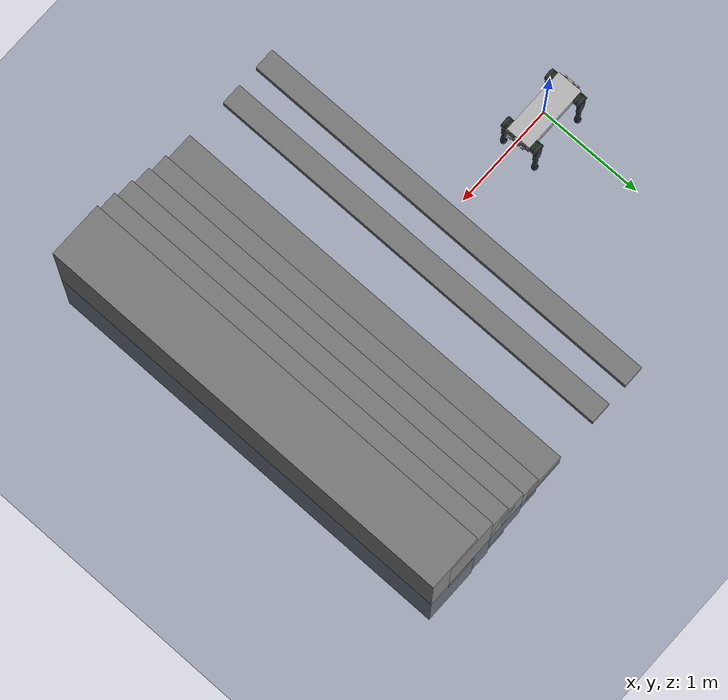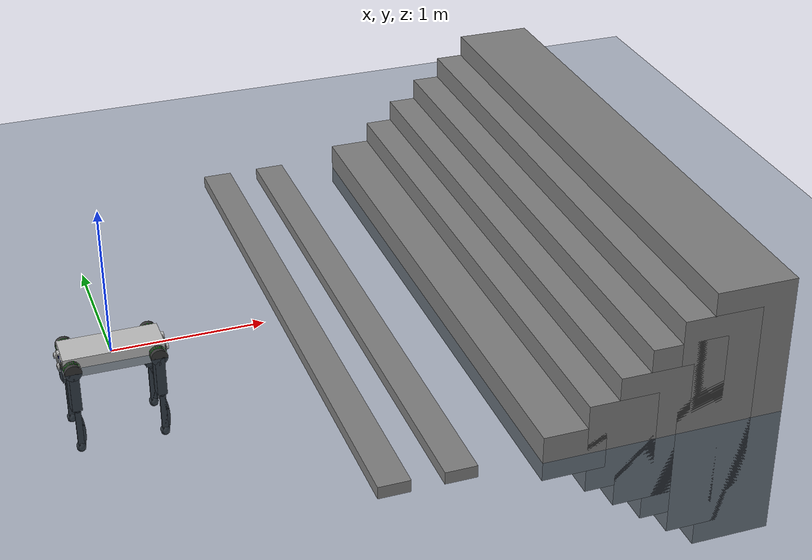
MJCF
<mujoco model="aliengo scene">
  <include file="test820.xml"/>

  <statistic center="0 0 0.1" extent="0.8"/>

  <visual>
    <headlight diffuse="0.6 0.6 0.6" ambient="0.3 0.3 0.3" specular="0 0 0"/>
    <rgba haze="0.15 0.25 0.35 1"/>
  </visual>

  <asset>
    <texture type="skybox" builtin="gradient" rgb1="0.3 0.5 0.7" rgb2="0 0 0" width="512" height="3072"/>
    <texture type="2d" name="groundplane" builtin="checker" mark="edge" rgb1="0.2 0.3 0.4" rgb2="0.1 0.2 0.3"
      markrgb="0.8 0.8 0.8" width="300" height="300"/>
    <material name="groundplane" texture="groundplane" texuniform="true" texrepeat="5 5" reflectance="0.2"/>
  </asset>

  <worldbody>
    <light pos="0 0 1.5" dir="0 0 -1" directional="true"/>
    <geom name="floor" size="0 0 0.05" type="plane" material="groundplane"/>

    <geom pos="1.2 0 0.04" type="box"  size="0.1 2 0.04" quat="1.0 0 0 0"/>
    <geom pos="1.6 0 0.04" type="box"  size="0.1 2 0.04" quat="1.0 0 0 0"/>

    <geom pos="2.3 0 0.02" type="box"  size="0.2 2 0.15" quat="1.0 0 0 0"/>
    <geom pos="2.6 0 0.02" type="box"  size="0.22 2 0.3" quat="1.0 0 0 0"/>
    <geom pos="2.8 0 0.02" type="box"  size="0.23 2 0.45" quat="1.0 0 0 0"/>
    <geom pos="3 0 0.02" type="box"  size="0.24 2 0.6" quat="1.0 0 0 0"/>
    <geom pos="3.2 0 0.02" type="box"  size="0.25 2 0.75" quat="1.0 0 0 0"/>
    <geom pos="3.4 0 0.02" type="box"  size="0.26 2 0.9" quat="1.0 0 0 0"/>
  </worldbody>
</mujoco>

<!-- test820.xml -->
<mujoco model="aliengo">
    <compiler angle="radian" meshdir="" />
    <size njmax="500" nconmax="100" />
    <asset>
        <mesh name="trunk" file="trunk.STL" />
        <mesh name="FR_hip" file="FR_hip.STL" />
        <mesh name="FR_thigh" file="FR_thigh.STL" />
        <mesh name="FR_calf" file="FR_calf.STL" />
        <mesh name="FR_foot" file="FR_foot.STL" />
        <mesh name="FL_hip" file="FL_hip.STL" />
        <mesh name="FL_thigh" file="FL_thigh.STL" />
        <mesh name="FL_calf" file="FL_calf.STL" />
        <mesh name="FL_foot" file="FL_foot.STL" />
        <mesh name="RR_hip" file="RR_hip.STL" />
        <mesh name="RR_thigh" file="RR_thigh.STL" />
        <mesh name="RR_calf" file="RR_calf.STL" />
        <mesh name="RR_foot" file="RR_foot.STL" />
        <mesh name="RL_hip" file="RL_hip.STL" />
        <mesh name="RL_thigh" file="RL_thigh.STL" />
        <mesh name="RL_calf" file="RL_calf.STL" />
        <mesh name="RL_foot" file="RL_foot.STL" />
    </asset>
    <worldbody>
        <geom size="0.0005 0.0005 0.0005" type="box" contype="0" conaffinity="0" group="1" />
        <geom type="mesh" contype="0" conaffinity="0" group="1" rgba="0.752941 0.752941 0.752941 1" mesh="trunk" />
        <geom size="0.3235 0.122 0.06675" type="box" rgba="0.752941 0.752941 0.752941 1" />
        <geom size="0.0005 0.0005 0.0005" type="box" contype="0" conaffinity="0" group="1" rgba="0.8 0 0.2 1" />
        <geom size="0.0005 0.0005 0.0005" type="box" rgba="0.8 0 0.2 1" />
        <geom size="0.025 0.01425" pos="0.17524 -0.065 0" quat="0.707107 0 0.707107 0" type="cylinder" contype="0" conaffinity="0" group="1" rgba="0.8 0 0.2 1" />
        <geom size="0.05 0.0285" pos="0.17524 -0.065 0" quat="0.707107 0 0.707107 0" type="cylinder" rgba="0.8 0 0.2 1" />
        <geom size="0.025 0.01425" pos="0.17524 0.065 0" quat="0.707107 0 0.707107 0" type="cylinder" contype="0" conaffinity="0" group="1" rgba="0.8 0 0.2 1" />
        <geom size="0.05 0.0285" pos="0.17524 0.065 0" quat="0.707107 0 0.707107 0" type="cylinder" rgba="0.8 0 0.2 1" />
        <geom size="0.025 0.01425" pos="-0.17524 -0.065 0" quat="0.707107 0 0.707107 0" type="cylinder" contype="0" conaffinity="0" group="1" rgba="0.8 0 0.2 1" />
        <geom size="0.05 0.0285" pos="-0.17524 -0.065 0" quat="0.707107 0 0.707107 0" type="cylinder" rgba="0.8 0 0.2 1" />
        <geom size="0.025 0.01425" pos="-0.17524 0.065 0" quat="0.707107 0 0.707107 0" type="cylinder" contype="0" conaffinity="0" group="1" rgba="0.8 0 0.2 1" />
        <geom size="0.05 0.0285" pos="-0.17524 0.065 0" quat="0.707107 0 0.707107 0" type="cylinder" rgba="0.8 0 0.2 1" />
        <body name="FR_hip" pos="0.2717 -0.065 0">
            <inertial pos="0 -0.0144744 0" quat="0.707107 0.707107 0 0" mass="1.86072" diaginertia="0.00531844 0.00531844 0.00323777" />
            <joint name="FR_hip_joint" pos="0 0 0" axis="1 0 0" limited="true" range="-0.873 1.047" />
            <geom type="mesh" contype="0" conaffinity="0" group="1" rgba="0.2 0.2 0.2 1" mesh="FR_hip" />
            <geom size="0.055 0.015" pos="0 -0.10665 0" quat="0.707107 0.707107 0 0" type="cylinder" rgba="0.2 0.2 0.2 1" />
            <geom size="0.0275 0.01375" pos="0 0.00545 0" quat="0.707107 0.707107 0 0" type="cylinder" contype="0" conaffinity="0" group="1" rgba="0 0 0.8 1" />
            <geom size="0.055 0.0275" pos="0 0.00545 0" quat="0.707107 0.707107 0 0" type="cylinder" rgba="0 0 0.8 1" />
            <body name="FR_thigh" pos="0 -0.10665 0">
                <inertial pos="0.00306424 0.0345571 -0.030486" quat="0.736578 -0.067477 0.0177918 0.672743" mass="1.9883" diaginertia="0.0184667 0.017479 0.00248764" />
                <joint name="FR_thigh_joint" pos="0 0 0" axis="0 1 0" limited="true" range="-0.524 3.927" />
                <geom type="mesh" contype="0" conaffinity="0" group="1" rgba="0.2 0.2 0.2 1" mesh="FR_thigh" />
                <geom size="0.0315 0.015 0.14" pos="0 0 -0.14" type="box" rgba="0.2 0.2 0.2 1" />
                <geom size="0.0275 0.01375" pos="0 0.0446 0" quat="0.707107 0.707107 0 0" type="cylinder" contype="0" conaffinity="0" group="1" rgba="0 0.8 0 1" />
                <geom size="0.055 0.0275" pos="0 0.0446 0" quat="0.707107 0.707107 0 0" type="cylinder" rgba="0 0.8 0 1" />
                <body name="FR_calf" pos="0 0 -0.28">
                    <inertial pos="0.010175 -0.000332634 -0.182164" quat="0.724338 0.00406092 0.0011974 0.689432" mass="0.25385" diaginertia="0.00350706 0.00348301 6.39204e-05" />
                    <joint name="FR_calf_joint" pos="0 0 0" axis="0 1 0" limited="true" range="-2.775 -0.611" />
                    <geom type="mesh" contype="0" conaffinity="0" group="1" rgba="0.2 0.2 0.2 1" mesh="FR_calf" />
                    <geom size="0.0195 0.01 0.14" pos="0 0 -0.14" type="box" rgba="0.2 0.2 0.2 1" />
                    <geom pos="0 0 -0.28" type="mesh" contype="0" conaffinity="0" group="1" rgba="0.2 0.2 0.2 1" mesh="FR_foot" />
                    <geom size="0.03" pos="0 0 -0.28" rgba="0.2 0.2 0.2 1" />
                </body>
            </body>
        </body>
        <body name="FL_hip" pos="0.2717 0.065 0">
            <inertial pos="0 0.0144744 0" quat="0.707107 0.707107 0 0" mass="1.86072" diaginertia="0.00531844 0.00531844 0.00323777" />
            <joint name="FL_hip_joint" pos="0 0 0" axis="1 0 0" limited="true" range="-0.873 1.047" />
            <geom type="mesh" contype="0" conaffinity="0" group="1" rgba="0.2 0.2 0.2 1" mesh="FL_hip" />
            <geom size="0.055 0.015" pos="0 0.10665 0" quat="0.707107 0.707107 0 0" type="cylinder" rgba="0.2 0.2 0.2 1" />
            <geom size="0.0275 0.01375" pos="0 -0.00545 0" quat="0.707107 0.707107 0 0" type="cylinder" contype="0" conaffinity="0" group="1" rgba="0 0 0.8 1" />
            <geom size="0.055 0.0275" pos="0 -0.00545 0" quat="0.707107 0.707107 0 0" type="cylinder" rgba="0 0 0.8 1" />
            <body name="FL_thigh" pos="0 0.10665 0">
                <inertial pos="0.00306424 -0.0345571 -0.030486" quat="0.672743 0.0177918 -0.067477 0.736578" mass="1.9883" diaginertia="0.0184667 0.017479 0.00248764" />
                <joint name="FL_thigh_joint" pos="0 0 0" axis="0 1 0" limited="true" range="-0.524 3.927" />
                <geom type="mesh" contype="0" conaffinity="0" group="1" rgba="0.2 0.2 0.2 1" mesh="FL_thigh" />
                <geom size="0.0315 0.015 0.14" pos="0 0 -0.14" type="box" rgba="0.2 0.2 0.2 1" />
                <geom size="0.0275 0.01375" pos="0 -0.0446 0" quat="0.707107 0.707107 0 0" type="cylinder" contype="0" conaffinity="0" group="1" rgba="0 0.8 0 1" />
                <geom size="0.055 0.0275" pos="0 -0.0446 0" quat="0.707107 0.707107 0 0" type="cylinder" rgba="0 0.8 0 1" />
                <body name="FL_calf" pos="0 0 -0.28">
                    <inertial pos="0.010175 -0.000332634 -0.182164" quat="0.724338 0.00406092 0.0011974 0.689432" mass="0.25385" diaginertia="0.00350706 0.00348301 6.39204e-05" />
                    <joint name="FL_calf_joint" pos="0 0 0" axis="0 1 0" limited="true" range="-2.775 -0.611" />
                    <geom type="mesh" contype="0" conaffinity="0" group="1" rgba="0.2 0.2 0.2 1" mesh="FL_calf" />
                    <geom size="0.0195 0.01 0.14" pos="0 0 -0.14" type="box" rgba="0.2 0.2 0.2 1" />
                    <geom pos="0 0 -0.28" type="mesh" contype="0" conaffinity="0" group="1" rgba="0.2 0.2 0.2 1" mesh="FL_foot" />
                    <geom size="0.03" pos="0 0 -0.28" rgba="0.2 0.2 0.2 1" />
                </body>
            </body>
        </body>
        <body name="RR_hip" pos="-0.2717 -0.065 0">
            <inertial pos="0 -0.0144744 0" quat="0.707107 0.707107 0 0" mass="1.86072" diaginertia="0.00531844 0.00531844 0.00323777" />
            <joint name="RR_hip_joint" pos="0 0 0" axis="1 0 0" limited="true" range="-0.873 1.047" />
            <geom type="mesh" contype="0" conaffinity="0" group="1" rgba="0.2 0.2 0.2 1" mesh="RR_hip" />
            <geom size="0.055 0.015" pos="0 -0.10665 0" quat="0.707107 0.707107 0 0" type="cylinder" rgba="0.2 0.2 0.2 1" />
            <geom size="0.0275 0.01375" pos="0 0.00545 0" quat="0.707107 0.707107 0 0" type="cylinder" contype="0" conaffinity="0" group="1" rgba="0 0 0.8 1" />
            <geom size="0.055 0.0275" pos="0 0.00545 0" quat="0.707107 0.707107 0 0" type="cylinder" rgba="0 0 0.8 1" />
            <body name="RR_thigh" pos="0 -0.10665 0">
                <inertial pos="0.00306424 0.0345571 -0.030486" quat="0.736578 -0.067477 0.0177918 0.672743" mass="1.9883" diaginertia="0.0184667 0.017479 0.00248764" />
                <joint name="RR_thigh_joint" pos="0 0 0" axis="0 1 0" limited="true" range="-0.524 3.927" />
                <geom type="mesh" contype="0" conaffinity="0" group="1" rgba="0.2 0.2 0.2 1" mesh="RR_thigh" />
                <geom size="0.0315 0.015 0.14" pos="0 0 -0.14" type="box" rgba="0.2 0.2 0.2 1" />
                <geom size="0.0275 0.01375" pos="0 0.0446 0" quat="0.707107 0.707107 0 0" type="cylinder" contype="0" conaffinity="0" group="1" rgba="0 0.8 0 1" />
                <geom size="0.055 0.0275" pos="0 0.0446 0" quat="0.707107 0.707107 0 0" type="cylinder" rgba="0 0.8 0 1" />
                <body name="RR_calf" pos="0 0 -0.28">
                    <inertial pos="0.010175 -0.000332634 -0.182164" quat="0.724338 0.00406092 0.0011974 0.689432" mass="0.25385" diaginertia="0.00350706 0.00348301 6.39204e-05" />
                    <joint name="RR_calf_joint" pos="0 0 0" axis="0 1 0" limited="true" range="-2.775 -0.611" />
                    <geom type="mesh" contype="0" conaffinity="0" group="1" rgba="0.2 0.2 0.2 1" mesh="RR_calf" />
                    <geom size="0.0195 0.01 0.14" pos="0 0 -0.14" type="box" rgba="0.2 0.2 0.2 1" />
                    <geom pos="0 0 -0.28" type="mesh" contype="0" conaffinity="0" group="1" rgba="0.2 0.2 0.2 1" mesh="RR_foot" />
                    <geom size="0.03" pos="0 0 -0.28" rgba="0.2 0.2 0.2 1" />
                </body>
            </body>
        </body>
        <body name="RL_hip" pos="-0.2717 0.065 0">
            <inertial pos="0 0.0144744 0" quat="0.707107 0.707107 0 0" mass="1.86072" diaginertia="0.00531844 0.00531844 0.00323777" />
            <joint name="RL_hip_joint" pos="0 0 0" axis="1 0 0" limited="true" range="-0.873 1.047" />
            <geom type="mesh" contype="0" conaffinity="0" group="1" rgba="0.2 0.2 0.2 1" mesh="RL_hip" />
            <geom size="0.055 0.015" pos="0 0.10665 0" quat="0.707107 0.707107 0 0" type="cylinder" rgba="0.2 0.2 0.2 1" />
            <geom size="0.0275 0.01375" pos="0 -0.00545 0" quat="0.707107 0.707107 0 0" type="cylinder" contype="0" conaffinity="0" group="1" rgba="0 0 0.8 1" />
            <geom size="0.055 0.0275" pos="0 -0.00545 0" quat="0.707107 0.707107 0 0" type="cylinder" rgba="0 0 0.8 1" />
            <body name="RL_thigh" pos="0 0.10665 0">
                <inertial pos="0.00306424 -0.0345571 -0.030486" quat="0.672743 0.0177918 -0.067477 0.736578" mass="1.9883" diaginertia="0.0184667 0.017479 0.00248764" />
                <joint name="RL_thigh_joint" pos="0 0 0" axis="0 1 0" limited="true" range="-0.524 3.927" />
                <geom type="mesh" contype="0" conaffinity="0" group="1" rgba="0.2 0.2 0.2 1" mesh="RL_thigh" />
                <geom size="0.0315 0.015 0.14" pos="0 0 -0.14" type="box" rgba="0.2 0.2 0.2 1" />
                <geom size="0.0275 0.01375" pos="0 -0.0446 0" quat="0.707107 0.707107 0 0" type="cylinder" contype="0" conaffinity="0" group="1" rgba="0 0.8 0 1" />
                <geom size="0.055 0.0275" pos="0 -0.0446 0" quat="0.707107 0.707107 0 0" type="cylinder" rgba="0 0.8 0 1" />
                <body name="RL_calf" pos="0 0 -0.28">
                    <inertial pos="0.010175 -0.000332634 -0.182164" quat="0.724338 0.00406092 0.0011974 0.689432" mass="0.25385" diaginertia="0.00350706 0.00348301 6.39204e-05" />
                    <joint name="RL_calf_joint" pos="0 0 0" axis="0 1 0" limited="true" range="-2.775 -0.611" />
                    <geom type="mesh" contype="0" conaffinity="0" group="1" rgba="0.2 0.2 0.2 1" mesh="RL_calf" />
                    <geom size="0.0195 0.01 0.14" pos="0 0 -0.14" type="box" rgba="0.2 0.2 0.2 1" />
                    <geom pos="0 0 -0.28" type="mesh" contype="0" conaffinity="0" group="1" rgba="0.2 0.2 0.2 1" mesh="RL_foot" />
                    <geom size="0.03" pos="0 0 -0.28" rgba="0.2 0.2 0.2 1" />
                </body>
            </body>
        </body>
    </worldbody>
</mujoco>
